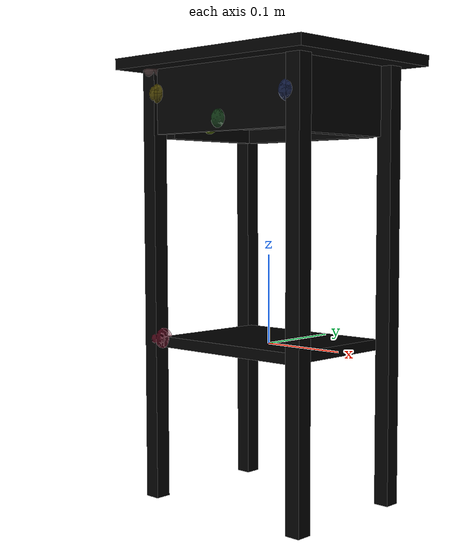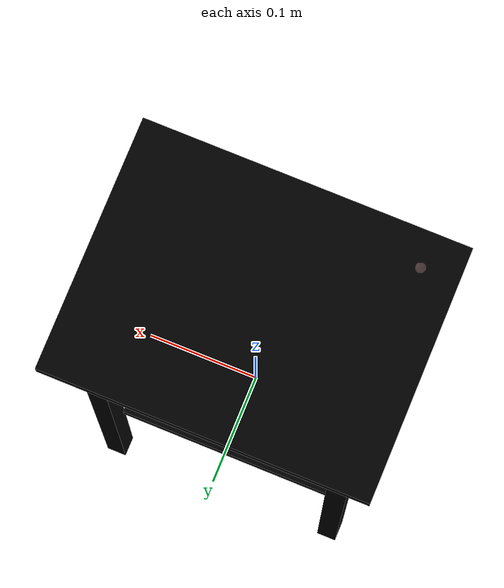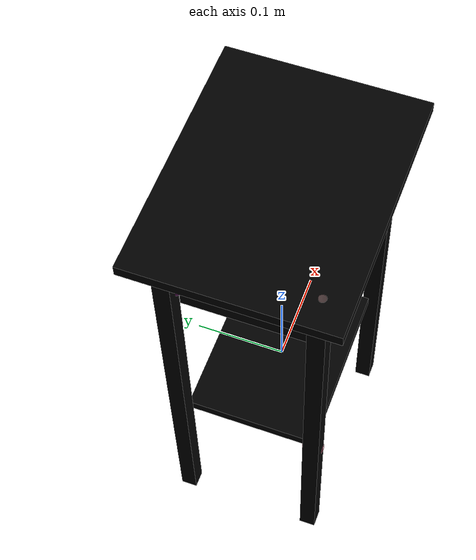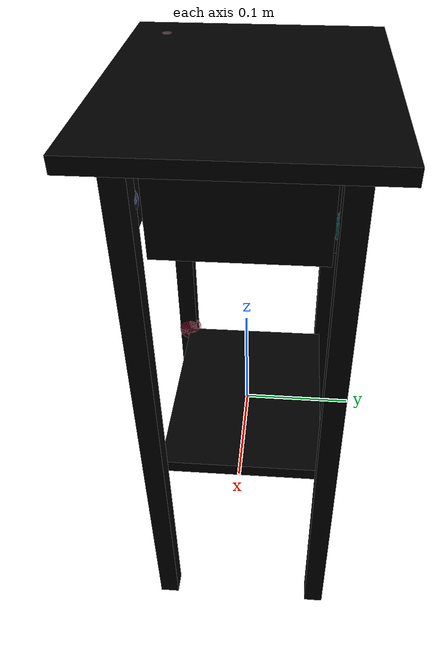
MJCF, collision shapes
<mujoco model="table_hemnes_0541">
    <custom>
        <numeric data="-0.325755 -0.178171 0.006066 1.0 -0.0 0.0 0.0" name="0_part0_initpos"/>
        <numeric data="-0.051426 -0.156712 0.005196 0.707105 0.707105 -0.001625 -0.001625" name="9_part9_initpos"/>
        <numeric data="0.168591 0.026762 0.007734 0.707089 -0.005005 0.707089 0.005005" name="8_part8_initpos"/>
        <numeric data="-0.029056 0.175695 0.008391 0.707107 -0.707107 -0.0 0.0" name="7_part7_initpos"/>
        <numeric data="-0.232284 0.056541 0.005655 0.70663 -0.025975 -0.70663 -0.025974" name="6_part6_initpos"/>
        <numeric data="0.426967 0.059525 0.006066 0.0 -0.998287 -0.058513 -0.0" name="5_part5_initpos"/>
        <numeric data="0.087723 0.406904 0.00969 0.707107 4e-06 0.707107 -4e-06" name="4_part4_initpos"/>
        <numeric data="-0.417659 0.288586 0.00969 0.707106 0.000879 0.707106 -0.000879" name="3_part3_initpos"/>
        <numeric data="-0.457292 0.40313 0.008645 -3e-06 -0.707107 3e-06 -0.707107" name="2_part2_initpos"/>
        <numeric data="-0.043002 0.021218 0.00297 1.0 0.0 -0.0 0.0" name="10_part10_initpos"/>
        <numeric data="0.128936 0.314328 0.00909 0.012357 -0.706999 -0.012357 -0.706999" name="1_part1_initpos"/>
    </custom>
    <asset>
        <mesh file="table_hemnes_0541/0.stl" name="part0" scale="0.0006 0.0006 0.0006"/>
        <mesh file="table_hemnes_0541/9.stl" name="part9" scale="0.0006 0.0006 0.0006"/>
        <mesh file="table_hemnes_0541/8.stl" name="part8" scale="0.0006 0.0006 0.0006"/>
        <mesh file="table_hemnes_0541/7.stl" name="part7" scale="0.0006 0.0006 0.0006"/>
        <mesh file="table_hemnes_0541/6.stl" name="part6" scale="0.0006 0.0006 0.0006"/>
        <mesh file="table_hemnes_0541/5.stl" name="part5" scale="0.0006 0.0006 0.0006"/>
        <mesh file="table_hemnes_0541/4.stl" name="part4" scale="0.0006 0.0006 0.0006"/>
        <mesh file="table_hemnes_0541/3.stl" name="part3" scale="0.0006 0.0006 0.0006"/>
        <mesh file="table_hemnes_0541/2.stl" name="part2" scale="0.0006 0.0006 0.0006"/>
        <mesh file="table_hemnes_0541/10.stl" name="part10" scale="0.0006 0.0006 0.0006"/>
        <mesh file="table_hemnes_0541/1.stl" name="part1" scale="0.0006 0.0006 0.0006"/>
    </asset>
    <equality>
        <weld active="false" body1="6_part6" body2="10_part10" solimp="1 1 0.5" solref="0.01 0.3"/>
        <weld active="false" body1="8_part8" body2="10_part10" solimp="1 1 0.5" solref="0.01 0.3"/>
        <weld active="false" body1="0_part0" body2="2_part2" solimp="1 1 0.5" solref="0.01 0.3"/>
        <weld active="false" body1="5_part5" body2="2_part2" solimp="1 1 0.5" solref="0.01 0.3"/>
        <weld active="false" body1="7_part7" body2="3_part3" solimp="1 1 0.5" solref="0.01 0.3"/>
        <weld active="false" body1="7_part7" body2="10_part10" solimp="1 1 0.5" solref="0.01 0.3"/>
        <weld active="false" body1="9_part9" body2="2_part2" solimp="1 1 0.5" solref="0.01 0.3"/>
        <weld active="false" body1="7_part7" body2="1_part1" solimp="1 1 0.5" solref="0.01 0.3"/>
        <weld active="false" body1="9_part9" body2="4_part4" solimp="1 1 0.5" solref="0.01 0.3"/>
        <weld active="false" body1="9_part9" body2="10_part10" solimp="1 1 0.5" solref="0.01 0.3"/>
    </equality>
    <worldbody>
        <body name="0_part0" pos="-7.8e-10 1.2e-10 -1.2e-10" quat="1 0 0 0">
            <geom conaffinity="0" contype="0" density="0" mesh="part0" name="0_part0_mesh" pos="0.0 0.0 0.0"
                  rgba="0.82 0.71 0.55 1" type="mesh"/>
            <site name="0_part0_horizontal_radius_site" pos="-7.8e-10 1.2e-10 -1.2e-10" quat="1 0 0 0" rgba="0 0 0 0"
                  size="0.0006"/>
            <site name="0_part0_top_site" pos="-8.399999999999999e-10 1.2e-10 0.00609600366" quat="1 0 0 0"
                  rgba="0 0 0 0" size="0.0006"/>
            <site name="0_part0_bottom_site" pos="-8.399999999999999e-10 1.2e-10 -0.0060960039" quat="1 0 0 0"
                  rgba="0 0 0 0" size="0.0006"/>
            <site name="0_part0_corner_site8" pos="-0.10668000186 0.07848599969999999 0.00609600366" quat="1 0 0 0"
                  rgba="0 0 0 0" size="0.012"/>
            <site name="0_part0_corner_site7" pos="0.10668000023999999 0.07848599969999999 0.00609600366" quat="1 0 0 0"
                  rgba="0 0 0 0" size="0.012"/>
            <site name="0_part0_corner_site6" pos="0.10668000023999999 -0.0784859994 0.00609600366" quat="1 0 0 0"
                  rgba="0 0 0 0" size="0.012"/>
            <site name="0_part0_corner_site5" pos="-0.10668000186 -0.0784859994 0.00609600366" quat="1 0 0 0"
                  rgba="0 0 0 0" size="0.012"/>
            <site name="0_part0_corner_site4" pos="-0.10668000186 0.07848599969999999 -0.0060960039" quat="1 0 0 0"
                  rgba="0 0 0 0" size="0.012"/>
            <site name="0_part0_corner_site3" pos="0.10668000023999999 0.07848599969999999 -0.0060960039" quat="1 0 0 0"
                  rgba="0 0 0 0" size="0.012"/>
            <site name="0_part0_corner_site2" pos="0.10668000023999999 -0.0784859994 -0.0060960039" quat="1 0 0 0"
                  rgba="0 0 0 0" size="0.012"/>
            <site name="0_part0_corner_site1" pos="-0.10668000186 -0.0784859994 -0.0060960039" quat="1 0 0 0"
                  rgba="0 0 0 0" size="0.012"/>
            <geom density="50" name="noviz_collision_0_part0_0" pos="0.0 0.000855 -3.3e-07" quat="1 0 0 0"
                  rgba="0 0 0 0" size="0.09648000000000001 0.072141 0.00609567" solref="0.001 1" type="box"/>
            <site name="legfrontleft-fllorbotleft,0,conn_site1" pos="-0.1002 -0.07182 0.00426"
                  quat="0.7071067 0 0.7071068 0" rgba="0.9019 0.0980 0.2941 0.3" size="0.012"/>
        </body>
        <body name="9_part9" pos="1.62e-09 -0.07391399862 0.26822400366000004" quat="1 0 0 0">
            <geom conaffinity="0" contype="0" density="0" mesh="part9" name="9_part9_mesh" pos="0.0 0.0 0.0"
                  rgba="0.82 0.71 0.55 1" type="mesh"/>
            <site name="9_part9_horizontal_radius_site" pos="0.0 0.0 0.0" quat="1 0 0 0" rgba="0 0 0 0" size="0.0006"/>
            <site name="9_part9_top_site" pos="0.0 0.0 0.0381" quat="1 0 0 0" rgba="0 0 0 0" size="0.0006"/>
            <site name="9_part9_bottom_site" pos="0.0 0.0 -0.0381" quat="1 0 0 0" rgba="0 0 0 0" size="0.0006"/>
            <site name="9_part9_corner_site8" pos="-0.09525000228000001 0.012192000360000002 0.0381" quat="1 0 0 0"
                  rgba="0 0 0 0" size="0.012"/>
            <site name="9_part9_corner_site7" pos="0.09525000228000001 0.012192000360000002 0.0381" quat="1 0 0 0"
                  rgba="0 0 0 0" size="0.012"/>
            <site name="9_part9_corner_site6" pos="0.09525000228000001 -0.012192000360000002 0.0381" quat="1 0 0 0"
                  rgba="0 0 0 0" size="0.012"/>
            <site name="9_part9_corner_site5" pos="-0.09525000228000001 -0.012192000360000002 0.0381" quat="1 0 0 0"
                  rgba="0 0 0 0" size="0.012"/>
            <site name="9_part9_corner_site4" pos="-0.09525000228000001 0.012192000360000002 -0.0381" quat="1 0 0 0"
                  rgba="0 0 0 0" size="0.012"/>
            <site name="9_part9_corner_site3" pos="0.09525000228000001 0.012192000360000002 -0.0381" quat="1 0 0 0"
                  rgba="0 0 0 0" size="0.012"/>
            <site name="9_part9_corner_site2" pos="0.09525000228000001 -0.012192000360000002 -0.0381" quat="1 0 0 0"
                  rgba="0 0 0 0" size="0.012"/>
            <site name="9_part9_corner_site1" pos="-0.09525000228000001 -0.012192000360000002 -0.0381" quat="1 0 0 0"
                  rgba="0 0 0 0" size="0.012"/>
            <geom density="50" name="noviz_collision_9_part9_0" pos="1.2e-08 -0.001626006 0.001775994" quat="1 0 0 0"
                  rgba="0 0 0 0" size="0.096 0.0036 0.036" solref="0.001 1" type="box"/>
            <site name="frontdrawer-bottom,0,conn_site1" pos="0.0 0.001133994 -0.021204" quat="0.7071067 0.7071068 0 0"
                  rgba="0.2352 0.7058 0.2941 0.3" size="0.012"/>
            <site name="front-leftleg,0,conn_site1" pos="-0.09714 -6e-09 0.010775994" quat="0.7071067 0 -0.7071068 0"
                  rgba="1.0 0.8823 0.0980 0.3" size="0.012"/>
            <site name="front-rightleg,0,conn_site1" pos="0.09768000000000002 -0.0011459999999999999 0.001775994"
                  quat="0.7071067 0 0.7071068 0" rgba="0.2627 0.3882 0.8470 0.3" size="0.012"/>
        </body>
        <body name="8_part8" pos="0.09715499658 -0.00609599646 0.26822400366000004" quat="1 0 0 0">
            <geom conaffinity="0" contype="0" density="0" mesh="part8" name="8_part8_mesh" pos="0.0 0.0 0.0"
                  rgba="0.82 0.71 0.55 1" type="mesh"/>
            <site name="8_part8_horizontal_radius_site" pos="0.0 0.0 0.0" quat="1 0 0 0" rgba="0 0 0 0" size="0.0006"/>
            <site name="8_part8_top_site" pos="0.0 0.0 0.0381" quat="1 0 0 0" rgba="0 0 0 0" size="0.0006"/>
            <site name="8_part8_bottom_site" pos="0.0 0.0 -0.0381" quat="1 0 0 0" rgba="0 0 0 0" size="0.0006"/>
            <site name="8_part8_corner_site8" pos="-0.009525 0.07239000318 0.0381" quat="1 0 0 0" rgba="0 0 0 0"
                  size="0.012"/>
            <site name="8_part8_corner_site7" pos="0.009525 0.07239000318 0.0381" quat="1 0 0 0" rgba="0 0 0 0"
                  size="0.012"/>
            <site name="8_part8_corner_site6" pos="0.009525 -0.07239000318 0.0381" quat="1 0 0 0" rgba="0 0 0 0"
                  size="0.012"/>
            <site name="8_part8_corner_site5" pos="-0.009525 -0.07239000318 0.0381" quat="1 0 0 0" rgba="0 0 0 0"
                  size="0.012"/>
            <site name="8_part8_corner_site4" pos="-0.009525 0.07239000318 -0.0381" quat="1 0 0 0" rgba="0 0 0 0"
                  size="0.012"/>
            <site name="8_part8_corner_site3" pos="0.009525 0.07239000318 -0.0381" quat="1 0 0 0" rgba="0 0 0 0"
                  size="0.012"/>
            <site name="8_part8_corner_site2" pos="0.009525 -0.07239000318 -0.0381" quat="1 0 0 0" rgba="0 0 0 0"
                  size="0.012"/>
            <site name="8_part8_corner_site1" pos="-0.009525 -0.07239000318 -0.0381" quat="1 0 0 0" rgba="0 0 0 0"
                  size="0.012"/>
            <geom density="50" name="noviz_collision_8_part8_0"
                  pos="0.00016089600000000003 0.009095994000000001 -0.000444012" quat="1 0 0 0" rgba="0 0 0 0"
                  size="0.0075 0.063 0.0381" solref="0.001 1" type="box"/>
            <site name="rightwall-bottom,0,conn_site1" pos="-0.006194988 -0.0001905 -0.018324006"
                  quat="0.7071067 0 0.7071068 0" rgba="0.9607 0.5098 0.1921 0.3" size="0.012"/>
        </body>
        <body name="7_part7" pos="1.62e-09 0.0681989994 0.26822400366000004" quat="1 0 0 0">
            <geom conaffinity="0" contype="0" density="0" mesh="part7" name="7_part7_mesh" pos="0.0 0.0 0.0"
                  rgba="0.82 0.71 0.55 1" type="mesh"/>
            <site name="7_part7_horizontal_radius_site" pos="0.0 0.0 0.0" quat="1 0 0 0" rgba="0 0 0 0" size="0.0006"/>
            <site name="7_part7_top_site" pos="0.0 0.0 0.0381" quat="1 0 0 0" rgba="0 0 0 0" size="0.0006"/>
            <site name="7_part7_bottom_site" pos="0.0 0.0 -0.0381" quat="1 0 0 0" rgba="0 0 0 0" size="0.0006"/>
            <site name="7_part7_corner_site8" pos="-0.09525000228000001 0.009525 0.0381" quat="1 0 0 0" rgba="0 0 0 0"
                  size="0.012"/>
            <site name="7_part7_corner_site7" pos="0.09525000228000001 0.009525 0.0381" quat="1 0 0 0" rgba="0 0 0 0"
                  size="0.012"/>
            <site name="7_part7_corner_site6" pos="0.09525000228000001 -0.009525 0.0381" quat="1 0 0 0" rgba="0 0 0 0"
                  size="0.012"/>
            <site name="7_part7_corner_site5" pos="-0.09525000228000001 -0.009525 0.0381" quat="1 0 0 0" rgba="0 0 0 0"
                  size="0.012"/>
            <site name="7_part7_corner_site4" pos="-0.09525000228000001 0.009525 -0.0381" quat="1 0 0 0" rgba="0 0 0 0"
                  size="0.012"/>
            <site name="7_part7_corner_site3" pos="0.09525000228000001 0.009525 -0.0381" quat="1 0 0 0" rgba="0 0 0 0"
                  size="0.012"/>
            <site name="7_part7_corner_site2" pos="0.09525000228000001 -0.009525 -0.0381" quat="1 0 0 0" rgba="0 0 0 0"
                  size="0.012"/>
            <site name="7_part7_corner_site1" pos="-0.09525000228000001 -0.009525 -0.0381" quat="1 0 0 0" rgba="0 0 0 0"
                  size="0.012"/>
            <geom density="50" name="noviz_collision_7_part7_0" pos="0.0 -0.000279 -0.0013440120000000001"
                  quat="1 0 0 0" rgba="0 0 0 0" size="0.087 0.0087 0.0375" solref="0.001 1" type="box"/>
            <site name="back-bottom,0,conn_site1" pos="0.0 -0.008199 -0.022644011999999998"
                  quat="0.7071067 -0.7071068 0 0" rgba="0.5686 0.1176 0.7058 0.3" size="0.012"/>
            <site name="backwall-rightbackleg,0,conn_site1" pos="0.09366 0.007581 -0.013644012000000002"
                  quat="0.7071067 0 0.7071068 0" rgba="0.2745 0.9411 0.9411 0.3" size="0.012"/>
            <site name="backwall-leftbackleg,0,conn_site1" pos="-0.09468000000000001 0.0051435 -0.021624006"
                  quat="0.7071067 0 -0.7071068 0" rgba="0.9411 0.1960 0.9019 0.3" size="0.012"/>
        </body>
        <body name="6_part6" pos="-0.0971549991 -0.00609599646 0.26822400366000004" quat="1 0 0 0">
            <geom conaffinity="0" contype="0" density="0" mesh="part6" name="6_part6_mesh" pos="0.0 0.0 0.0"
                  rgba="0.82 0.71 0.55 1" type="mesh"/>
            <site name="6_part6_horizontal_radius_site" pos="0.0 0.0 0.0" quat="1 0 0 0" rgba="0 0 0 0" size="0.0006"/>
            <site name="6_part6_top_site" pos="0.0 0.0 0.0381" quat="1 0 0 0" rgba="0 0 0 0" size="0.0006"/>
            <site name="6_part6_bottom_site" pos="0.0 0.0 -0.0381" quat="1 0 0 0" rgba="0 0 0 0" size="0.0006"/>
            <site name="6_part6_corner_site8" pos="-0.009525001140000001 0.07239000318 0.0381" quat="1 0 0 0"
                  rgba="0 0 0 0" size="0.012"/>
            <site name="6_part6_corner_site7" pos="0.009525001140000001 0.07239000318 0.0381" quat="1 0 0 0"
                  rgba="0 0 0 0" size="0.012"/>
            <site name="6_part6_corner_site6" pos="0.009525001140000001 -0.07239000318 0.0381" quat="1 0 0 0"
                  rgba="0 0 0 0" size="0.012"/>
            <site name="6_part6_corner_site5" pos="-0.009525001140000001 -0.07239000318 0.0381" quat="1 0 0 0"
                  rgba="0 0 0 0" size="0.012"/>
            <site name="6_part6_corner_site4" pos="-0.009525001140000001 0.07239000318 -0.0381" quat="1 0 0 0"
                  rgba="0 0 0 0" size="0.012"/>
            <site name="6_part6_corner_site3" pos="0.009525001140000001 0.07239000318 -0.0381" quat="1 0 0 0"
                  rgba="0 0 0 0" size="0.012"/>
            <site name="6_part6_corner_site2" pos="0.009525001140000001 -0.07239000318 -0.0381" quat="1 0 0 0"
                  rgba="0 0 0 0" size="0.012"/>
            <site name="6_part6_corner_site1" pos="-0.009525001140000001 -0.07239000318 -0.0381" quat="1 0 0 0"
                  rgba="0 0 0 0" size="0.012"/>
            <geom density="50" name="noviz_collision_6_part6_0" pos="0.0018150059999999999 0.008135994 -0.000444012"
                  quat="1 0 0 0" rgba="0 0 0 0" size="0.0075 0.063 0.0381" solref="0.001 1" type="box"/>
            <site name="leftwall-bottom,0,conn_site1" pos="0.006555 -0.0001905 -0.019584005999999998"
                  quat="0.7071067 0 -0.7071068 0" rgba="0.7372 0.9647 0.0470 0.3" size="0.012"/>
        </body>
        <body name="5_part5" pos="2.4e-10 0.00228600012 0.31242000366" quat="1 0 0 0">
            <geom conaffinity="0" contype="0" density="0" mesh="part5" name="5_part5_mesh" pos="0.0 0.0 0.0"
                  rgba="0.82 0.71 0.55 1" type="mesh"/>
            <site name="5_part5_horizontal_radius_site" pos="0.0 0.0 0.0" quat="1 0 0 0" rgba="0 0 0 0" size="0.0006"/>
            <site name="5_part5_top_site" pos="0.0 0.0 0.006096" quat="1 0 0 0" rgba="0 0 0 0" size="0.0006"/>
            <site name="5_part5_bottom_site" pos="0.0 0.0 -0.006096" quat="1 0 0 0" rgba="0 0 0 0" size="0.0006"/>
            <site name="5_part5_corner_site8" pos="-0.13716 0.10668000000000001 0.006096" quat="1 0 0 0" rgba="0 0 0 0"
                  size="0.012"/>
            <site name="5_part5_corner_site7" pos="0.13716 0.10668000000000001 0.006096" quat="1 0 0 0" rgba="0 0 0 0"
                  size="0.012"/>
            <site name="5_part5_corner_site6" pos="0.13716 -0.10668000000000001 0.006096" quat="1 0 0 0" rgba="0 0 0 0"
                  size="0.012"/>
            <site name="5_part5_corner_site5" pos="-0.13716 -0.10668000000000001 0.006096" quat="1 0 0 0" rgba="0 0 0 0"
                  size="0.012"/>
            <site name="5_part5_corner_site4" pos="-0.13716 0.10668000000000001 -0.006096" quat="1 0 0 0" rgba="0 0 0 0"
                  size="0.012"/>
            <site name="5_part5_corner_site3" pos="0.13716 0.10668000000000001 -0.006096" quat="1 0 0 0" rgba="0 0 0 0"
                  size="0.012"/>
            <site name="5_part5_corner_site2" pos="0.13716 -0.10668000000000001 -0.006096" quat="1 0 0 0" rgba="0 0 0 0"
                  size="0.012"/>
            <site name="5_part5_corner_site1" pos="-0.13716 -0.10668000000000001 -0.006096" quat="1 0 0 0"
                  rgba="0 0 0 0" size="0.012"/>
            <geom density="50" name="noviz_collision_5_part5_0" pos="0.0 0.0 0.0" quat="1 0 0 0" rgba="0 0 0 0"
                  size="0.13716 0.10668000000000001 0.006096" solref="0.001 1" type="box"/>
            <site name="top-leftleg,0,conn_site1" pos="-0.10536 -0.07728600000000001 -0.0051" quat="1 0 0 0"
                  rgba="0.9803 0.7450 0.7450 0.3" size="0.012"/>
        </body>
        <body name="4_part4" pos="0.10668000413999999 -0.0739139994 0.062484003659999995" quat="1 0 0 0">
            <geom conaffinity="0" contype="0" density="0" mesh="part4" name="4_part4_mesh" pos="0.0 0.0 0.0"
                  rgba="0.82 0.71 0.55 1" type="mesh"/>
            <site name="4_part4_horizontal_radius_site" pos="2.4e-10 -0.0 0.0" quat="1 0 0 0" rgba="0 0 0 0"
                  size="0.0006"/>
            <site name="4_part4_top_site" pos="2.4e-10 0.0 0.24383999999999997" quat="1 0 0 0" rgba="0 0 0 0"
                  size="0.0006"/>
            <site name="4_part4_bottom_site" pos="2.4e-10 0.0 -0.24383999999999997" quat="1 0 0 0" rgba="0 0 0 0"
                  size="0.0006"/>
            <site name="4_part4_corner_site8" pos="-0.011430003660000002 0.012192 0.24383999999999997" quat="1 0 0 0"
                  rgba="0 0 0 0" size="0.012"/>
            <site name="4_part4_corner_site7" pos="0.01143000414 0.012192 0.24383999999999997" quat="1 0 0 0"
                  rgba="0 0 0 0" size="0.012"/>
            <site name="4_part4_corner_site6" pos="0.01143000414 -0.012192 0.24383999999999997" quat="1 0 0 0"
                  rgba="0 0 0 0" size="0.012"/>
            <site name="4_part4_corner_site5" pos="-0.011430003660000002 -0.012192 0.24383999999999997" quat="1 0 0 0"
                  rgba="0 0 0 0" size="0.012"/>
            <site name="4_part4_corner_site4" pos="-0.011430003660000002 0.012192 -0.24383999999999997" quat="1 0 0 0"
                  rgba="0 0 0 0" size="0.012"/>
            <site name="4_part4_corner_site3" pos="0.01143000414 0.012192 -0.24383999999999997" quat="1 0 0 0"
                  rgba="0 0 0 0" size="0.012"/>
            <site name="4_part4_corner_site2" pos="0.01143000414 -0.012192 -0.24383999999999997" quat="1 0 0 0"
                  rgba="0 0 0 0" size="0.012"/>
            <site name="4_part4_corner_site1" pos="-0.011430003660000002 -0.012192 -0.24383999999999997" quat="1 0 0 0"
                  rgba="0 0 0 0" size="0.012"/>
            <geom density="50" name="noviz_collision_4_part4_0" pos="0.0007199999999999999 0.000342042 0.000515994"
                  quat="1 0 0 0" rgba="0 0 0 0" size="0.009 0.009 0.243" solref="0.001 1" type="box"/>
            <site name="rightleg-front,0,conn_site1" pos="-0.009 -0.0011459999999999999 0.207516"
                  quat="0.7071067 0 0.7071068 0" rgba="0.2627 0.3882 0.8470 0.3" size="0.012"/>
        </body>
        <body name="3_part3" pos="0.10668000413999999 0.07848599412 0.062484003659999995" quat="1 0 0 0">
            <geom conaffinity="0" contype="0" density="0" mesh="part3" name="3_part3_mesh" pos="0.0 0.0 0.0"
                  rgba="0.82 0.71 0.55 1" type="mesh"/>
            <site name="3_part3_horizontal_radius_site" pos="2.4e-10 6e-11 0.0" quat="1 0 0 0" rgba="0 0 0 0"
                  size="0.0006"/>
            <site name="3_part3_top_site" pos="2.4e-10 6e-11 0.24383999999999997" quat="1 0 0 0" rgba="0 0 0 0"
                  size="0.0006"/>
            <site name="3_part3_bottom_site" pos="2.4e-10 6e-11 -0.24383999999999997" quat="1 0 0 0" rgba="0 0 0 0"
                  size="0.0006"/>
            <site name="3_part3_corner_site8" pos="-0.011430003660000002 0.012192005640000001 0.24383999999999997"
                  quat="1 0 0 0" rgba="0 0 0 0" size="0.012"/>
            <site name="3_part3_corner_site7" pos="0.01143000414 0.012192005640000001 0.24383999999999997"
                  quat="1 0 0 0" rgba="0 0 0 0" size="0.012"/>
            <site name="3_part3_corner_site6" pos="0.01143000414 -0.012192005520000002 0.24383999999999997"
                  quat="1 0 0 0" rgba="0 0 0 0" size="0.012"/>
            <site name="3_part3_corner_site5" pos="-0.011430003660000002 -0.012192005520000002 0.24383999999999997"
                  quat="1 0 0 0" rgba="0 0 0 0" size="0.012"/>
            <site name="3_part3_corner_site4" pos="-0.011430003660000002 0.012192005640000001 -0.24383999999999997"
                  quat="1 0 0 0" rgba="0 0 0 0" size="0.012"/>
            <site name="3_part3_corner_site3" pos="0.01143000414 0.012192005640000001 -0.24383999999999997"
                  quat="1 0 0 0" rgba="0 0 0 0" size="0.012"/>
            <site name="3_part3_corner_site2" pos="0.01143000414 -0.012192005520000002 -0.24383999999999997"
                  quat="1 0 0 0" rgba="0 0 0 0" size="0.012"/>
            <site name="3_part3_corner_site1" pos="-0.011430003660000002 -0.012192005520000002 -0.24383999999999997"
                  quat="1 0 0 0" rgba="0 0 0 0" size="0.012"/>
            <geom density="50" name="noviz_collision_3_part3_0" pos="0.0007199999999999999 -0.001266 0.000515994"
                  quat="1 0 0 0" rgba="0 0 0 0" size="0.009 0.009 0.243" solref="0.001 1" type="box"/>
            <site name="rightbackleg-backwall,0,conn_site1" pos="-0.01302 -0.002705994 0.19209600000000002"
                  quat="0.7071067 0 0.7071068 0" rgba="0.2745 0.9411 0.9411 0.3" size="0.012"/>
        </body>
        <body name="2_part2" pos="-0.10667999976 -0.0739139994 0.062484003659999995" quat="1 0 0 0">
            <geom conaffinity="0" contype="0" density="0" mesh="part2" name="2_part2_mesh" pos="0.0 0.0 0.0"
                  rgba="0.82 0.71 0.55 1" type="mesh"/>
            <site name="2_part2_horizontal_radius_site" pos="0.0 -0.0 0.0" quat="1 0 0 0" rgba="0 0 0 0" size="0.0006"/>
            <site name="2_part2_top_site" pos="0.0 0.0 0.24383999999999997" quat="1 0 0 0" rgba="0 0 0 0"
                  size="0.0006"/>
            <site name="2_part2_bottom_site" pos="0.0 0.0 -0.24383999999999997" quat="1 0 0 0" rgba="0 0 0 0"
                  size="0.0006"/>
            <site name="2_part2_corner_site8" pos="-0.011430000000000001 0.012192 0.24383999999999997" quat="1 0 0 0"
                  rgba="0 0 0 0" size="0.012"/>
            <site name="2_part2_corner_site7" pos="0.011430000000000001 0.012192 0.24383999999999997" quat="1 0 0 0"
                  rgba="0 0 0 0" size="0.012"/>
            <site name="2_part2_corner_site6" pos="0.011430000000000001 -0.012192 0.24383999999999997" quat="1 0 0 0"
                  rgba="0 0 0 0" size="0.012"/>
            <site name="2_part2_corner_site5" pos="-0.011430000000000001 -0.012192 0.24383999999999997" quat="1 0 0 0"
                  rgba="0 0 0 0" size="0.012"/>
            <site name="2_part2_corner_site4" pos="-0.011430000000000001 0.012192 -0.24383999999999997" quat="1 0 0 0"
                  rgba="0 0 0 0" size="0.012"/>
            <site name="2_part2_corner_site3" pos="0.011430000000000001 0.012192 -0.24383999999999997" quat="1 0 0 0"
                  rgba="0 0 0 0" size="0.012"/>
            <site name="2_part2_corner_site2" pos="0.011430000000000001 -0.012192 -0.24383999999999997" quat="1 0 0 0"
                  rgba="0 0 0 0" size="0.012"/>
            <site name="2_part2_corner_site1" pos="-0.011430000000000001 -0.012192 -0.24383999999999997" quat="1 0 0 0"
                  rgba="0 0 0 0" size="0.012"/>
            <geom density="50" name="noviz_collision_2_part2_0" pos="0.000325074 0.000342042 0.000515994" quat="1 0 0 0"
                  rgba="0 0 0 0" size="0.009 0.009 0.243" solref="0.001 1" type="box"/>
            <site name="fllorbotleft-legfrontleft,0,conn_site1"
                  pos="0.0064800000000000005 0.002094006 -0.058224005999999995" quat="0.7071067 0 0.7071068 0"
                  rgba="0.9019 0.0980 0.2941 0.3" size="0.012"/>
            <site name="leftleg-front,0,conn_site1" pos="0.009540005999999998 0.0 0.21651600000000001"
                  quat="0.7071067 0 -0.7071068 0" rgba="1.0 0.8823 0.0980 0.3" size="0.012"/>
            <site name="leftleg-top,0,conn_site1" pos="0.00132 -0.0010860000000000002 0.244836" quat="1 0 0 0"
                  rgba="0.9803 0.7450 0.7450 0.3" size="0.012"/>
        </body>
        <body name="10_part10" pos="2.4e-10 -0.00647699892 0.24765000366" quat="1 0 0 0">
            <geom conaffinity="0" contype="0" density="0" mesh="part10" name="10_part10_mesh" pos="0.0 0.0 0.0"
                  rgba="0.82 0.71 0.55 1" type="mesh"/>
            <site name="10_part10_horizontal_radius_site" pos="9e-10 0.0 -0.0" quat="1 0 0 0" rgba="0 0 0 0"
                  size="0.0006"/>
            <site name="10_part10_top_site" pos="9e-10 0.0 0.002286" quat="1 0 0 0" rgba="0 0 0 0" size="0.0006"/>
            <site name="10_part10_bottom_site" pos="9e-10 0.0 -0.002286" quat="1 0 0 0" rgba="0 0 0 0" size="0.0006"/>
            <site name="10_part10_corner_site8" pos="-0.09143999910000002 0.06896100312 0.002286" quat="1 0 0 0"
                  rgba="0 0 0 0" size="0.012"/>
            <site name="10_part10_corner_site7" pos="0.0914400009 0.06896100312 0.002286" quat="1 0 0 0" rgba="0 0 0 0"
                  size="0.012"/>
            <site name="10_part10_corner_site6" pos="0.0914400009 -0.06896100312 0.002286" quat="1 0 0 0" rgba="0 0 0 0"
                  size="0.012"/>
            <site name="10_part10_corner_site5" pos="-0.09143999910000002 -0.06896100312 0.002286" quat="1 0 0 0"
                  rgba="0 0 0 0" size="0.012"/>
            <site name="10_part10_corner_site4" pos="-0.09143999910000002 0.06896100312 -0.002286" quat="1 0 0 0"
                  rgba="0 0 0 0" size="0.012"/>
            <site name="10_part10_corner_site3" pos="0.0914400009 0.06896100312 -0.002286" quat="1 0 0 0" rgba="0 0 0 0"
                  size="0.012"/>
            <site name="10_part10_corner_site2" pos="0.0914400009 -0.06896100312 -0.002286" quat="1 0 0 0"
                  rgba="0 0 0 0" size="0.012"/>
            <site name="10_part10_corner_site1" pos="-0.09143999910000002 -0.06896100312 -0.002286" quat="1 0 0 0"
                  rgba="0 0 0 0" size="0.012"/>
            <site name="bottom-leftwall,0,conn_site1" pos="-0.0906 0.0001905 0.000989994"
                  quat="0.7071067 0 -0.7071068 0" rgba="0.7372 0.9647 0.0470 0.3" size="0.012"/>
            <site name="bottom-rightwall,0,conn_site1" pos="0.09095999999999999 0.0001905 0.00225"
                  quat="0.7071067 0 0.7071068 0" rgba="0.9607 0.5098 0.1921 0.3" size="0.012"/>
            <site name="bottom-frontdrawer,0,conn_site1" pos="0.0 -0.06630299999999999 -0.0006299939999999999"
                  quat="0.7071067 0.7071068 0 0" rgba="0.2352 0.7058 0.2941 0.3" size="0.012"/>
            <site name="bottom-back,0,conn_site1" pos="0.0 0.066477 -0.0020700059999999997"
                  quat="0.7071067 -0.7071068 0 0" rgba="0.5686 0.1176 0.7058 0.3" size="0.012"/>
            <geom density="50" name="noviz_collision_10_part10_0" pos="0.0 0.000855 -3.3e-07" quat="1 0 0 0"
                  rgba="0 0 0 0" size="0.084 0.06 0.003" solref="0.001 1" type="box"/>
        </body>
        <body name="1_part1" pos="-0.10667999976 0.07848599412 0.062484003659999995" quat="1 0 0 0">
            <geom conaffinity="0" contype="0" density="0" mesh="part1" name="1_part1_mesh" pos="0.0 0.0 0.0"
                  rgba="0.82 0.71 0.55 1" type="mesh"/>
            <site name="1_part1_horizontal_radius_site" pos="0.0 6e-11 0.0" quat="1 0 0 0" rgba="0 0 0 0"
                  size="0.0006"/>
            <site name="1_part1_top_site" pos="0.0 6e-11 0.24383999999999997" quat="1 0 0 0" rgba="0 0 0 0"
                  size="0.0006"/>
            <site name="1_part1_bottom_site" pos="0.0 6e-11 -0.24383999999999997" quat="1 0 0 0" rgba="0 0 0 0"
                  size="0.0006"/>
            <site name="1_part1_corner_site8" pos="-0.011430000000000001 0.012192005640000001 0.24383999999999997"
                  quat="1 0 0 0" rgba="0 0 0 0" size="0.012"/>
            <site name="1_part1_corner_site7" pos="0.011430000000000001 0.012192005640000001 0.24383999999999997"
                  quat="1 0 0 0" rgba="0 0 0 0" size="0.012"/>
            <site name="1_part1_corner_site6" pos="0.011430000000000001 -0.012192005520000002 0.24383999999999997"
                  quat="1 0 0 0" rgba="0 0 0 0" size="0.012"/>
            <site name="1_part1_corner_site5" pos="-0.011430000000000001 -0.012192005520000002 0.24383999999999997"
                  quat="1 0 0 0" rgba="0 0 0 0" size="0.012"/>
            <site name="1_part1_corner_site4" pos="-0.011430000000000001 0.012192005640000001 -0.24383999999999997"
                  quat="1 0 0 0" rgba="0 0 0 0" size="0.012"/>
            <site name="1_part1_corner_site3" pos="0.011430000000000001 0.012192005640000001 -0.24383999999999997"
                  quat="1 0 0 0" rgba="0 0 0 0" size="0.012"/>
            <site name="1_part1_corner_site2" pos="0.011430000000000001 -0.012192005520000002 -0.24383999999999997"
                  quat="1 0 0 0" rgba="0 0 0 0" size="0.012"/>
            <site name="1_part1_corner_site1" pos="-0.011430000000000001 -0.012192005520000002 -0.24383999999999997"
                  quat="1 0 0 0" rgba="0 0 0 0" size="0.012"/>
            <geom density="50" name="noviz_collision_1_part1_0" pos="-0.00012 -0.001266 0.000515994" quat="1 0 0 0"
                  rgba="0 0 0 0" size="0.009 0.009 0.243" solref="0.001 1" type="box"/>
            <site name="leftbackleg-backwall,0,conn_site1" pos="0.012 -0.005143494 0.184116"
                  quat="0.7071067 0 -0.7071068 0" rgba="0.9411 0.1960 0.9019 0.3" size="0.012"/>
        </body>
    </worldbody>
    <actuator/>
    <sensor/>
    <contact/>
    <default/>
</mujoco>
